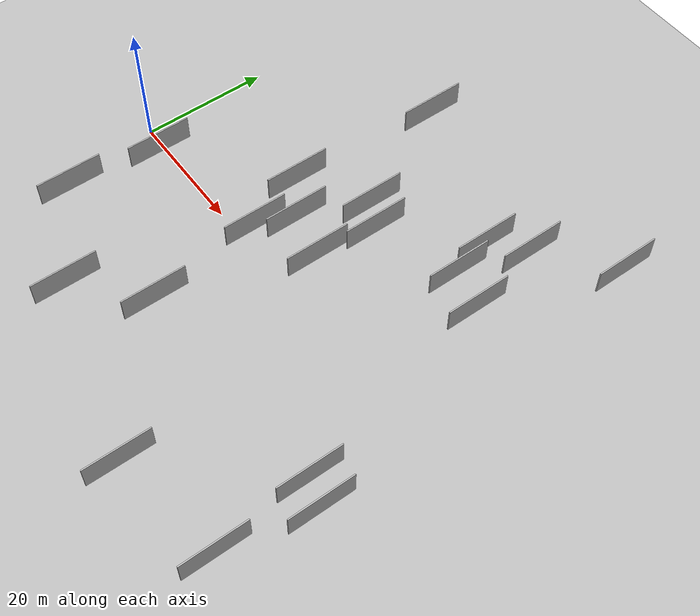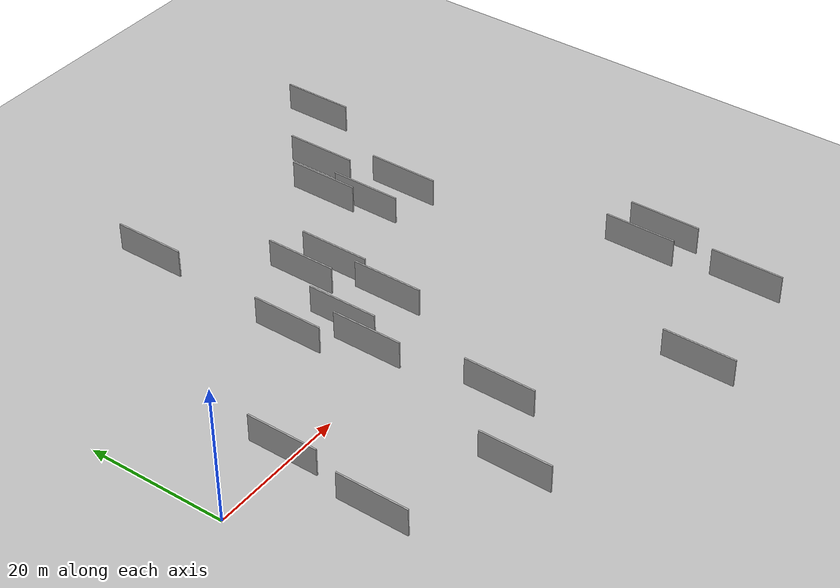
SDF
<?xml version="1.0" encoding="utf-8"?>

<sdf version="1.6">

   <world name="default">

      <gui fullscreen="0">

         <camera name="user_camera">

            <pose>-15 0 4.57585 0 0 0</pose>

            <view_controller>orbit</view_controller>

         </camera>

      </gui>

      <scene>

         <sky>

           <clouds>

             <speed>12</speed>

           </clouds>

         </sky>

         <ambient>0.4 0.4 0.4 1</ambient>

         <background>0.7 0.7 0.7 1</background>

         <shadows>1</shadows>

      </scene>

      <gravity>0 0 -9.8066</gravity>

      <magnetic_field>6e-06 2.3e-05 -4.2e-05</magnetic_field>

      <physics default="0" name="default_physics" type="ode">

         <ode>

            <solver>

               <type>quick</type>

               <iters>10</iters>

               <sor>1.0</sor>

               <use_dynamic_moi_rescaling>0</use_dynamic_moi_rescaling>

            </solver>

            <constraints>

               <cfm>0</cfm>

               <erp>0.2</erp>

               <contact_max_correcting_vel>100</contact_max_correcting_vel>

               <contact_surface_layer>0.001</contact_surface_layer>

            </constraints>

         </ode>

         <max_step_size>0.004</max_step_size>

         <real_time_factor>1</real_time_factor>

         <real_time_update_rate>250</real_time_update_rate>

      </physics>

      <light name="sun" type="directional">

         <cast_shadows>1</cast_shadows>

         <pose>0 0 10 0 0 0</pose>

         <diffuse>0.8 0.8 0.8 1</diffuse>

         <specular>0.2 0.2 0.2 1</specular>

         <attenuation>

            <range>1000</range>

            <constant>0.9</constant>

            <linear>0.01</linear>

            <quadratic>0.001</quadratic>

         </attenuation>

         <direction>-0.5 0.1 -0.9</direction>

      </light>

      <include>

         <name>ground_plane_1</name>

         <uri>model://HANNAS_ground_plane</uri>

         <pose>0 0 0  0 0 0</pose>

      </include>

      <include>

         <name>ground_plane_2</name>

         <uri>model://HANNAS_ground_plane</uri>

         <pose>100 0 0  0 0 0</pose>

      </include>

      <model name="HANNAS_wall_1">

         <static>1</static>

         <pose frame="">8.2752 -2.5555 5.0 0.000000 0.000000 1.570796</pose>

         <link name="link">

            <pose frame="">0 0 2.00 0 0 0</pose>

            <collision name="collision">

               <geometry>

                  <box>

                     <size>10.00 0.2 4.00</size>

                  </box>

               </geometry>

               <max_contacts>10</max_contacts>

               <surface>

                  <contact>

                     <ode/>

                  </contact>

                  <bounce/>

                  <friction>

                     <torsional>

                        <ode/>

                     </torsional>

                     <ode/>

                  </friction>

               </surface>

            </collision>

            <visual name="visual">

               <cast_shadows>0</cast_shadows>

               <geometry>

                  <box>

                     <size>10.00 0.2 4.00</size>

                  </box>

               </geometry>

               <material>

                  <script>

                     <uri>model://HANNAS_wall/materials/scripts</uri>

                     <uri>model://HANNAS_wall/materials/textures</uri>

                     <name>vrc/HANNAS_wall</name>

                  </script>

               </material>

            </visual>

            <self_collide>0</self_collide>

            <enable_wind>0</enable_wind>

            <kinematic>0</kinematic>

         </link>

      </model>

      <model name="HANNAS_wall_2">

         <static>1</static>

         <pose frame="">49.0769 -33.2562 5.0 0.000000 0.000000 1.570796</pose>

         <link name="link">

            <pose frame="">0 0 2.00 0 0 0</pose>

            <collision name="collision">

               <geometry>

                  <box>

                     <size>10.00 0.2 4.00</size>

                  </box>

               </geometry>

               <max_contacts>10</max_contacts>

               <surface>

                  <contact>

                     <ode/>

                  </contact>

                  <bounce/>

                  <friction>

                     <torsional>

                        <ode/>

                     </torsional>

                     <ode/>

                  </friction>

               </surface>

            </collision>

            <visual name="visual">

               <cast_shadows>0</cast_shadows>

               <geometry>

                  <box>

                     <size>10.00 0.2 4.00</size>

                  </box>

               </geometry>

               <material>

                  <script>

                     <uri>model://HANNAS_wall/materials/scripts</uri>

                     <uri>model://HANNAS_wall/materials/textures</uri>

                     <name>vrc/HANNAS_wall</name>

                  </script>

               </material>

            </visual>

            <self_collide>0</self_collide>

            <enable_wind>0</enable_wind>

            <kinematic>0</kinematic>

         </link>

      </model>

      <model name="HANNAS_wall_3">

         <static>1</static>

         <pose frame="">66.2617 -30.2694 5.0 0.000000 0.000000 1.570796</pose>

         <link name="link">

            <pose frame="">0 0 2.00 0 0 0</pose>

            <collision name="collision">

               <geometry>

                  <box>

                     <size>10.00 0.2 4.00</size>

                  </box>

               </geometry>

               <max_contacts>10</max_contacts>

               <surface>

                  <contact>

                     <ode/>

                  </contact>

                  <bounce/>

                  <friction>

                     <torsional>

                        <ode/>

                     </torsional>

                     <ode/>

                  </friction>

               </surface>

            </collision>

            <visual name="visual">

               <cast_shadows>0</cast_shadows>

               <geometry>

                  <box>

                     <size>10.00 0.2 4.00</size>

                  </box>

               </geometry>

               <material>

                  <script>

                     <uri>model://HANNAS_wall/materials/scripts</uri>

                     <uri>model://HANNAS_wall/materials/textures</uri>

                     <name>vrc/HANNAS_wall</name>

                  </script>

               </material>

            </visual>

            <self_collide>0</self_collide>

            <enable_wind>0</enable_wind>

            <kinematic>0</kinematic>

         </link>

      </model>

      <model name="HANNAS_wall_4">

         <static>1</static>

         <pose frame="">50.2032 24.6366 5.0 0.000000 0.000000 1.570796</pose>

         <link name="link">

            <pose frame="">0 0 2.00 0 0 0</pose>

            <collision name="collision">

               <geometry>

                  <box>

                     <size>10.00 0.2 4.00</size>

                  </box>

               </geometry>

               <max_contacts>10</max_contacts>

               <surface>

                  <contact>

                     <ode/>

                  </contact>

                  <bounce/>

                  <friction>

                     <torsional>

                        <ode/>

                     </torsional>

                     <ode/>

                  </friction>

               </surface>

            </collision>

            <visual name="visual">

               <cast_shadows>0</cast_shadows>

               <geometry>

                  <box>

                     <size>10.00 0.2 4.00</size>

                  </box>

               </geometry>

               <material>

                  <script>

                     <uri>model://HANNAS_wall/materials/scripts</uri>

                     <uri>model://HANNAS_wall/materials/textures</uri>

                     <name>vrc/HANNAS_wall</name>

                  </script>

               </material>

            </visual>

            <self_collide>0</self_collide>

            <enable_wind>0</enable_wind>

            <kinematic>0</kinematic>

         </link>

      </model>

      <model name="HANNAS_wall_5">

         <static>1</static>

         <pose frame="">37.9070 4.7780 5.0 0.000000 0.000000 1.570796</pose>

         <link name="link">

            <pose frame="">0 0 2.00 0 0 0</pose>

            <collision name="collision">

               <geometry>

                  <box>

                     <size>10.00 0.2 4.00</size>

                  </box>

               </geometry>

               <max_contacts>10</max_contacts>

               <surface>

                  <contact>

                     <ode/>

                  </contact>

                  <bounce/>

                  <friction>

                     <torsional>

                        <ode/>

                     </torsional>

                     <ode/>

                  </friction>

               </surface>

            </collision>

            <visual name="visual">

               <cast_shadows>0</cast_shadows>

               <geometry>

                  <box>

                     <size>10.00 0.2 4.00</size>

                  </box>

               </geometry>

               <material>

                  <script>

                     <uri>model://HANNAS_wall/materials/scripts</uri>

                     <uri>model://HANNAS_wall/materials/textures</uri>

                     <name>vrc/HANNAS_wall</name>

                  </script>

               </material>

            </visual>

            <self_collide>0</self_collide>

            <enable_wind>0</enable_wind>

            <kinematic>0</kinematic>

         </link>

      </model>

      <model name="HANNAS_wall_6">

         <static>1</static>

         <pose frame="">64.7421 37.0832 5.0 0.000000 0.000000 1.570796</pose>

         <link name="link">

            <pose frame="">0 0 2.00 0 0 0</pose>

            <collision name="collision">

               <geometry>

                  <box>

                     <size>10.00 0.2 4.00</size>

                  </box>

               </geometry>

               <max_contacts>10</max_contacts>

               <surface>

                  <contact>

                     <ode/>

                  </contact>

                  <bounce/>

                  <friction>

                     <torsional>

                        <ode/>

                     </torsional>

                     <ode/>

                  </friction>

               </surface>

            </collision>

            <visual name="visual">

               <cast_shadows>0</cast_shadows>

               <geometry>

                  <box>

                     <size>10.00 0.2 4.00</size>

                  </box>

               </geometry>

               <material>

                  <script>

                     <uri>model://HANNAS_wall/materials/scripts</uri>

                     <uri>model://HANNAS_wall/materials/textures</uri>

                     <name>vrc/HANNAS_wall</name>

                  </script>

               </material>

            </visual>

            <self_collide>0</self_collide>

            <enable_wind>0</enable_wind>

            <kinematic>0</kinematic>

         </link>

      </model>

      <model name="HANNAS_wall_7">

         <static>1</static>

         <pose frame="">6.7464 -16.4873 5.0 0.000000 0.000000 1.570796</pose>

         <link name="link">

            <pose frame="">0 0 2.00 0 0 0</pose>

            <collision name="collision">

               <geometry>

                  <box>

                     <size>10.00 0.2 4.00</size>

                  </box>

               </geometry>

               <max_contacts>10</max_contacts>

               <surface>

                  <contact>

                     <ode/>

                  </contact>

                  <bounce/>

                  <friction>

                     <torsional>

                        <ode/>

                     </torsional>

                     <ode/>

                  </friction>

               </surface>

            </collision>

            <visual name="visual">

               <cast_shadows>0</cast_shadows>

               <geometry>

                  <box>

                     <size>10.00 0.2 4.00</size>

                  </box>

               </geometry>

               <material>

                  <script>

                     <uri>model://HANNAS_wall/materials/scripts</uri>

                     <uri>model://HANNAS_wall/materials/textures</uri>

                     <name>vrc/HANNAS_wall</name>

                  </script>

               </material>

            </visual>

            <self_collide>0</self_collide>

            <enable_wind>0</enable_wind>

            <kinematic>0</kinematic>

         </link>

      </model>

      <model name="HANNAS_wall_8">

         <static>1</static>

         <pose frame="">68.9569 -16.7948 5.0 0.000000 0.000000 1.570796</pose>

         <link name="link">

            <pose frame="">0 0 2.00 0 0 0</pose>

            <collision name="collision">

               <geometry>

                  <box>

                     <size>10.00 0.2 4.00</size>

                  </box>

               </geometry>

               <max_contacts>10</max_contacts>

               <surface>

                  <contact>

                     <ode/>

                  </contact>

                  <bounce/>

                  <friction>

                     <torsional>

                        <ode/>

                     </torsional>

                     <ode/>

                  </friction>

               </surface>

            </collision>

            <visual name="visual">

               <cast_shadows>0</cast_shadows>

               <geometry>

                  <box>

                     <size>10.00 0.2 4.00</size>

                  </box>

               </geometry>

               <material>

                  <script>

                     <uri>model://HANNAS_wall/materials/scripts</uri>

                     <uri>model://HANNAS_wall/materials/textures</uri>

                     <name>vrc/HANNAS_wall</name>

                  </script>

               </material>

            </visual>

            <self_collide>0</self_collide>

            <enable_wind>0</enable_wind>

            <kinematic>0</kinematic>

         </link>

      </model>

      <model name="HANNAS_wall_9">

         <static>1</static>

         <pose frame="">25.0666 10.3537 5.0 0.000000 0.000000 1.570796</pose>

         <link name="link">

            <pose frame="">0 0 2.00 0 0 0</pose>

            <collision name="collision">

               <geometry>

                  <box>

                     <size>10.00 0.2 4.00</size>

                  </box>

               </geometry>

               <max_contacts>10</max_contacts>

               <surface>

                  <contact>

                     <ode/>

                  </contact>

                  <bounce/>

                  <friction>

                     <torsional>

                        <ode/>

                     </torsional>

                     <ode/>

                  </friction>

               </surface>

            </collision>

            <visual name="visual">

               <cast_shadows>0</cast_shadows>

               <geometry>

                  <box>

                     <size>10.00 0.2 4.00</size>

                  </box>

               </geometry>

               <material>

                  <script>

                     <uri>model://HANNAS_wall/materials/scripts</uri>

                     <uri>model://HANNAS_wall/materials/textures</uri>

                     <name>vrc/HANNAS_wall</name>

                  </script>

               </material>

            </visual>

            <self_collide>0</self_collide>

            <enable_wind>0</enable_wind>

            <kinematic>0</kinematic>

         </link>

      </model>

      <model name="HANNAS_wall_10">

         <static>1</static>

         <pose frame="">30.7117 6.2708 5.0 0.000000 0.000000 1.570796</pose>

         <link name="link">

            <pose frame="">0 0 2.00 0 0 0</pose>

            <collision name="collision">

               <geometry>

                  <box>

                     <size>10.00 0.2 4.00</size>

                  </box>

               </geometry>

               <max_contacts>10</max_contacts>

               <surface>

                  <contact>

                     <ode/>

                  </contact>

                  <bounce/>

                  <friction>

                     <torsional>

                        <ode/>

                     </torsional>

                     <ode/>

                  </friction>

               </surface>

            </collision>

            <visual name="visual">

               <cast_shadows>0</cast_shadows>

               <geometry>

                  <box>

                     <size>10.00 0.2 4.00</size>

                  </box>

               </geometry>

               <material>

                  <script>

                     <uri>model://HANNAS_wall/materials/scripts</uri>

                     <uri>model://HANNAS_wall/materials/textures</uri>

                     <name>vrc/HANNAS_wall</name>

                  </script>

               </material>

            </visual>

            <self_collide>0</self_collide>

            <enable_wind>0</enable_wind>

            <kinematic>0</kinematic>

         </link>

      </model>

      <model name="HANNAS_wall_11">

         <static>1</static>

         <pose frame="">34.9934 16.2437 5.0 0.000000 0.000000 1.570796</pose>

         <link name="link">

            <pose frame="">0 0 2.00 0 0 0</pose>

            <collision name="collision">

               <geometry>

                  <box>

                     <size>10.00 0.2 4.00</size>

                  </box>

               </geometry>

               <max_contacts>10</max_contacts>

               <surface>

                  <contact>

                     <ode/>

                  </contact>

                  <bounce/>

                  <friction>

                     <torsional>

                        <ode/>

                     </torsional>

                     <ode/>

                  </friction>

               </surface>

            </collision>

            <visual name="visual">

               <cast_shadows>0</cast_shadows>

               <geometry>

                  <box>

                     <size>10.00 0.2 4.00</size>

                  </box>

               </geometry>

               <material>

                  <script>

                     <uri>model://HANNAS_wall/materials/scripts</uri>

                     <uri>model://HANNAS_wall/materials/textures</uri>

                     <name>vrc/HANNAS_wall</name>

                  </script>

               </material>

            </visual>

            <self_collide>0</self_collide>

            <enable_wind>0</enable_wind>

            <kinematic>0</kinematic>

         </link>

      </model>

      <model name="HANNAS_wall_12">

         <static>1</static>

         <pose frame="">64.8208 -15.5819 5.0 0.000000 0.000000 1.570796</pose>

         <link name="link">

            <pose frame="">0 0 2.00 0 0 0</pose>

            <collision name="collision">

               <geometry>

                  <box>

                     <size>10.00 0.2 4.00</size>

                  </box>

               </geometry>

               <max_contacts>10</max_contacts>

               <surface>

                  <contact>

                     <ode/>

                  </contact>

                  <bounce/>

                  <friction>

                     <torsional>

                        <ode/>

                     </torsional>

                     <ode/>

                  </friction>

               </surface>

            </collision>

            <visual name="visual">

               <cast_shadows>0</cast_shadows>

               <geometry>

                  <box>

                     <size>10.00 0.2 4.00</size>

                  </box>

               </geometry>

               <material>

                  <script>

                     <uri>model://HANNAS_wall/materials/scripts</uri>

                     <uri>model://HANNAS_wall/materials/textures</uri>

                     <name>vrc/HANNAS_wall</name>

                  </script>

               </material>

            </visual>

            <self_collide>0</self_collide>

            <enable_wind>0</enable_wind>

            <kinematic>0</kinematic>

         </link>

      </model>

      <model name="HANNAS_wall_13">

         <static>1</static>

         <pose frame="">38.9391 13.9883 5.0 0.000000 0.000000 1.570796</pose>

         <link name="link">

            <pose frame="">0 0 2.00 0 0 0</pose>

            <collision name="collision">

               <geometry>

                  <box>

                     <size>10.00 0.2 4.00</size>

                  </box>

               </geometry>

               <max_contacts>10</max_contacts>

               <surface>

                  <contact>

                     <ode/>

                  </contact>

                  <bounce/>

                  <friction>

                     <torsional>

                        <ode/>

                     </torsional>

                     <ode/>

                  </friction>

               </surface>

            </collision>

            <visual name="visual">

               <cast_shadows>0</cast_shadows>

               <geometry>

                  <box>

                     <size>10.00 0.2 4.00</size>

                  </box>

               </geometry>

               <material>

                  <script>

                     <uri>model://HANNAS_wall/materials/scripts</uri>

                     <uri>model://HANNAS_wall/materials/textures</uri>

                     <name>vrc/HANNAS_wall</name>

                  </script>

               </material>

            </visual>

            <self_collide>0</self_collide>

            <enable_wind>0</enable_wind>

            <kinematic>0</kinematic>

         </link>

      </model>

      <model name="HANNAS_wall_14">

         <static>1</static>

         <pose frame="">57.6074 16.9045 5.0 0.000000 0.000000 1.570796</pose>

         <link name="link">

            <pose frame="">0 0 2.00 0 0 0</pose>

            <collision name="collision">

               <geometry>

                  <box>

                     <size>10.00 0.2 4.00</size>

                  </box>

               </geometry>

               <max_contacts>10</max_contacts>

               <surface>

                  <contact>

                     <ode/>

                  </contact>

                  <bounce/>

                  <friction>

                     <torsional>

                        <ode/>

                     </torsional>

                     <ode/>

                  </friction>

               </surface>

            </collision>

            <visual name="visual">

               <cast_shadows>0</cast_shadows>

               <geometry>

                  <box>

                     <size>10.00 0.2 4.00</size>

                  </box>

               </geometry>

               <material>

                  <script>

                     <uri>model://HANNAS_wall/materials/scripts</uri>

                     <uri>model://HANNAS_wall/materials/textures</uri>

                     <name>vrc/HANNAS_wall</name>

                  </script>

               </material>

            </visual>

            <self_collide>0</self_collide>

            <enable_wind>0</enable_wind>

            <kinematic>0</kinematic>

         </link>

      </model>

      <model name="HANNAS_wall_15">

         <static>1</static>

         <pose frame="">54.9142 28.7425 5.0 0.000000 0.000000 1.570796</pose>

         <link name="link">

            <pose frame="">0 0 2.00 0 0 0</pose>

            <collision name="collision">

               <geometry>

                  <box>

                     <size>10.00 0.2 4.00</size>

                  </box>

               </geometry>

               <max_contacts>10</max_contacts>

               <surface>

                  <contact>

                     <ode/>

                  </contact>

                  <bounce/>

                  <friction>

                     <torsional>

                        <ode/>

                     </torsional>

                     <ode/>

                  </friction>

               </surface>

            </collision>

            <visual name="visual">

               <cast_shadows>0</cast_shadows>

               <geometry>

                  <box>

                     <size>10.00 0.2 4.00</size>

                  </box>

               </geometry>

               <material>

                  <script>

                     <uri>model://HANNAS_wall/materials/scripts</uri>

                     <uri>model://HANNAS_wall/materials/textures</uri>

                     <name>vrc/HANNAS_wall</name>

                  </script>

               </material>

            </visual>

            <self_collide>0</self_collide>

            <enable_wind>0</enable_wind>

            <kinematic>0</kinematic>

         </link>

      </model>

      <model name="HANNAS_wall_16">

         <static>1</static>

         <pose frame="">21.4777 -25.4282 5.0 0.000000 0.000000 1.570796</pose>

         <link name="link">

            <pose frame="">0 0 2.00 0 0 0</pose>

            <collision name="collision">

               <geometry>

                  <box>

                     <size>10.00 0.2 4.00</size>

                  </box>

               </geometry>

               <max_contacts>10</max_contacts>

               <surface>

                  <contact>

                     <ode/>

                  </contact>

                  <bounce/>

                  <friction>

                     <torsional>

                        <ode/>

                     </torsional>

                     <ode/>

                  </friction>

               </surface>

            </collision>

            <visual name="visual">

               <cast_shadows>0</cast_shadows>

               <geometry>

                  <box>

                     <size>10.00 0.2 4.00</size>

                  </box>

               </geometry>

               <material>

                  <script>

                     <uri>model://HANNAS_wall/materials/scripts</uri>

                     <uri>model://HANNAS_wall/materials/textures</uri>

                     <name>vrc/HANNAS_wall</name>

                  </script>

               </material>

            </visual>

            <self_collide>0</self_collide>

            <enable_wind>0</enable_wind>

            <kinematic>0</kinematic>

         </link>

      </model>

      <model name="HANNAS_wall_17">

         <static>1</static>

         <pose frame="">26.4028 34.0244 5.0 0.000000 0.000000 1.570796</pose>

         <link name="link">

            <pose frame="">0 0 2.00 0 0 0</pose>

            <collision name="collision">

               <geometry>

                  <box>

                     <size>10.00 0.2 4.00</size>

                  </box>

               </geometry>

               <max_contacts>10</max_contacts>

               <surface>

                  <contact>

                     <ode/>

                  </contact>

                  <bounce/>

                  <friction>

                     <torsional>

                        <ode/>

                     </torsional>

                     <ode/>

                  </friction>

               </surface>

            </collision>

            <visual name="visual">

               <cast_shadows>0</cast_shadows>

               <geometry>

                  <box>

                     <size>10.00 0.2 4.00</size>

                  </box>

               </geometry>

               <material>

                  <script>

                     <uri>model://HANNAS_wall/materials/scripts</uri>

                     <uri>model://HANNAS_wall/materials/textures</uri>

                     <name>vrc/HANNAS_wall</name>

                  </script>

               </material>

            </visual>

            <self_collide>0</self_collide>

            <enable_wind>0</enable_wind>

            <kinematic>0</kinematic>

         </link>

      </model>

      <model name="HANNAS_wall_18">

         <static>1</static>

         <pose frame="">28.4708 0.8219 5.0 0.000000 0.000000 1.570796</pose>

         <link name="link">

            <pose frame="">0 0 2.00 0 0 0</pose>

            <collision name="collision">

               <geometry>

                  <box>

                     <size>10.00 0.2 4.00</size>

                  </box>

               </geometry>

               <max_contacts>10</max_contacts>

               <surface>

                  <contact>

                     <ode/>

                  </contact>

                  <bounce/>

                  <friction>

                     <torsional>

                        <ode/>

                     </torsional>

                     <ode/>

                  </friction>

               </surface>

            </collision>

            <visual name="visual">

               <cast_shadows>0</cast_shadows>

               <geometry>

                  <box>

                     <size>10.00 0.2 4.00</size>

                  </box>

               </geometry>

               <material>

                  <script>

                     <uri>model://HANNAS_wall/materials/scripts</uri>

                     <uri>model://HANNAS_wall/materials/textures</uri>

                     <name>vrc/HANNAS_wall</name>

                  </script>

               </material>

            </visual>

            <self_collide>0</self_collide>

            <enable_wind>0</enable_wind>

            <kinematic>0</kinematic>

         </link>

      </model>

      <model name="HANNAS_wall_19">

         <static>1</static>

         <pose frame="">30.7554 -16.9731 5.0 0.000000 0.000000 1.570796</pose>

         <link name="link">

            <pose frame="">0 0 2.00 0 0 0</pose>

            <collision name="collision">

               <geometry>

                  <box>

                     <size>10.00 0.2 4.00</size>

                  </box>

               </geometry>

               <max_contacts>10</max_contacts>

               <surface>

                  <contact>

                     <ode/>

                  </contact>

                  <bounce/>

                  <friction>

                     <torsional>

                        <ode/>

                     </torsional>

                     <ode/>

                  </friction>

               </surface>

            </collision>

            <visual name="visual">

               <cast_shadows>0</cast_shadows>

               <geometry>

                  <box>

                     <size>10.00 0.2 4.00</size>

                  </box>

               </geometry>

               <material>

                  <script>

                     <uri>model://HANNAS_wall/materials/scripts</uri>

                     <uri>model://HANNAS_wall/materials/textures</uri>

                     <name>vrc/HANNAS_wall</name>

                  </script>

               </material>

            </visual>

            <self_collide>0</self_collide>

            <enable_wind>0</enable_wind>

            <kinematic>0</kinematic>

         </link>

      </model>

      <model name="HANNAS_wall_20">

         <static>1</static>

         <pose frame="">51.5362 18.5857 5.0 0.000000 0.000000 1.570796</pose>

         <link name="link">

            <pose frame="">0 0 2.00 0 0 0</pose>

            <collision name="collision">

               <geometry>

                  <box>

                     <size>10.00 0.2 4.00</size>

                  </box>

               </geometry>

               <max_contacts>10</max_contacts>

               <surface>

                  <contact>

                     <ode/>

                  </contact>

                  <bounce/>

                  <friction>

                     <torsional>

                        <ode/>

                     </torsional>

                     <ode/>

                  </friction>

               </surface>

            </collision>

            <visual name="visual">

               <cast_shadows>0</cast_shadows>

               <geometry>

                  <box>

                     <size>10.00 0.2 4.00</size>

                  </box>

               </geometry>

               <material>

                  <script>

                     <uri>model://HANNAS_wall/materials/scripts</uri>

                     <uri>model://HANNAS_wall/materials/textures</uri>

                     <name>vrc/HANNAS_wall</name>

                  </script>

               </material>

            </visual>

            <self_collide>0</self_collide>

            <enable_wind>0</enable_wind>

            <kinematic>0</kinematic>

         </link>

      </model>

   </world>

</sdf>

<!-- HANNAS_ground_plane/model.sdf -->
<sdf version="1.4">
<model name="HANNAS_ground_plane">
  <static>true</static>
    <link name="link">
      <collision name="collision">
        <geometry>
          <plane>
            <normal>0 0 1</normal>
            <size>1000 1000</size>
          </plane>
        </geometry>
        <surface>
          <friction>
            <ode>
              <mu>100</mu>
              <mu2>50</mu2>
            </ode>
          </friction>
        </surface>
      </collision>
      <visual name="visual">
        <cast_shadows>false</cast_shadows>
        <geometry>
          <plane>
            <normal>0 0 1</normal>
            <size>1000 1000</size>
          </plane>
        </geometry>
        <material>
          <script>
            <uri>model://HANNAS_ground_plane/materials/scripts/HANNAS_ground_plane.material</uri>
	    <uri>model://HANNAS_ground_plane/materials/textures</uri>
            <name>HANNASGroundPlane/Image</name>
          </script>
        </material>
      </visual>
    </link>
  </model>
</sdf>
